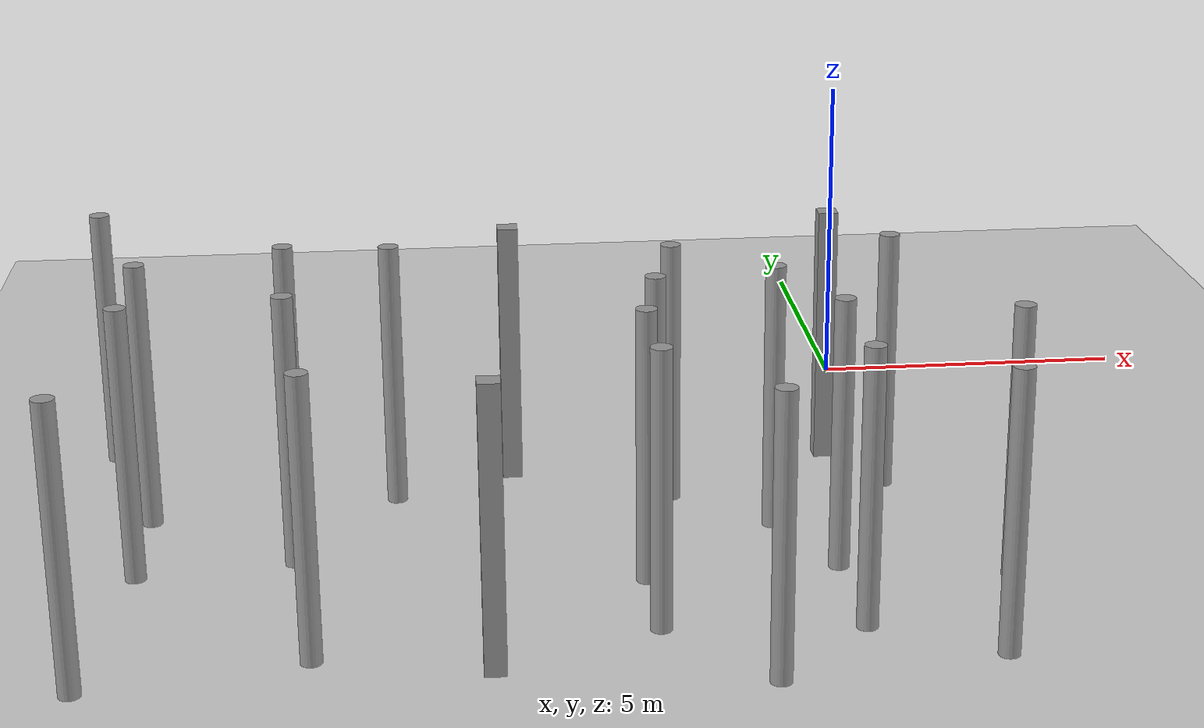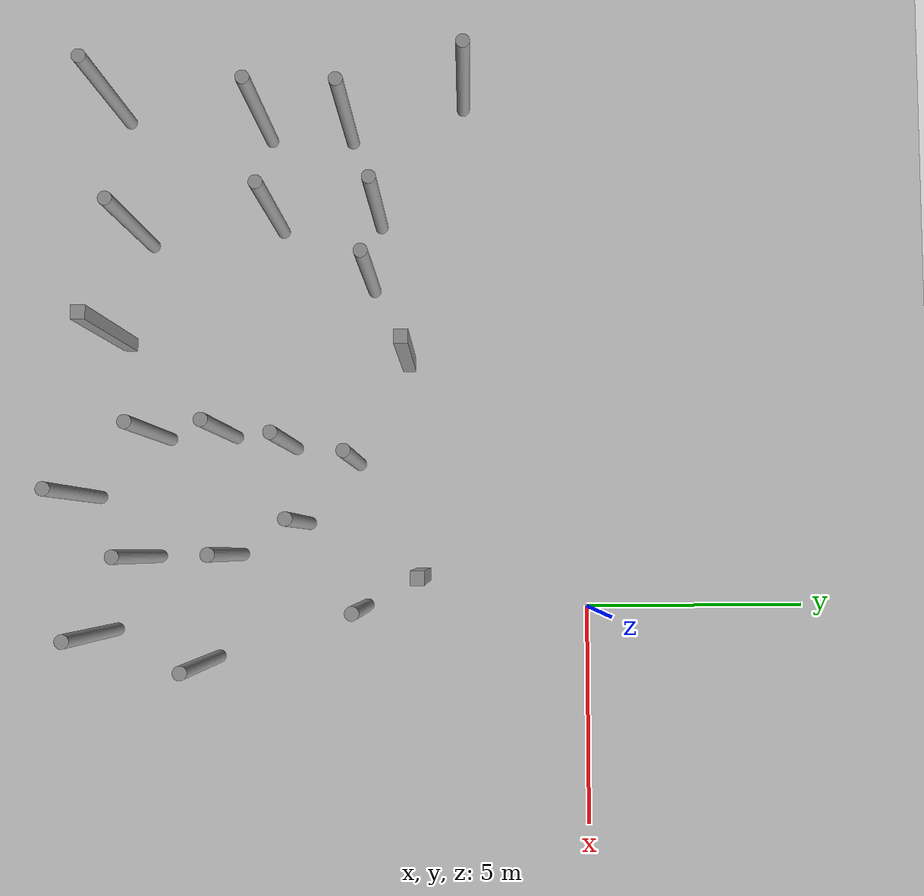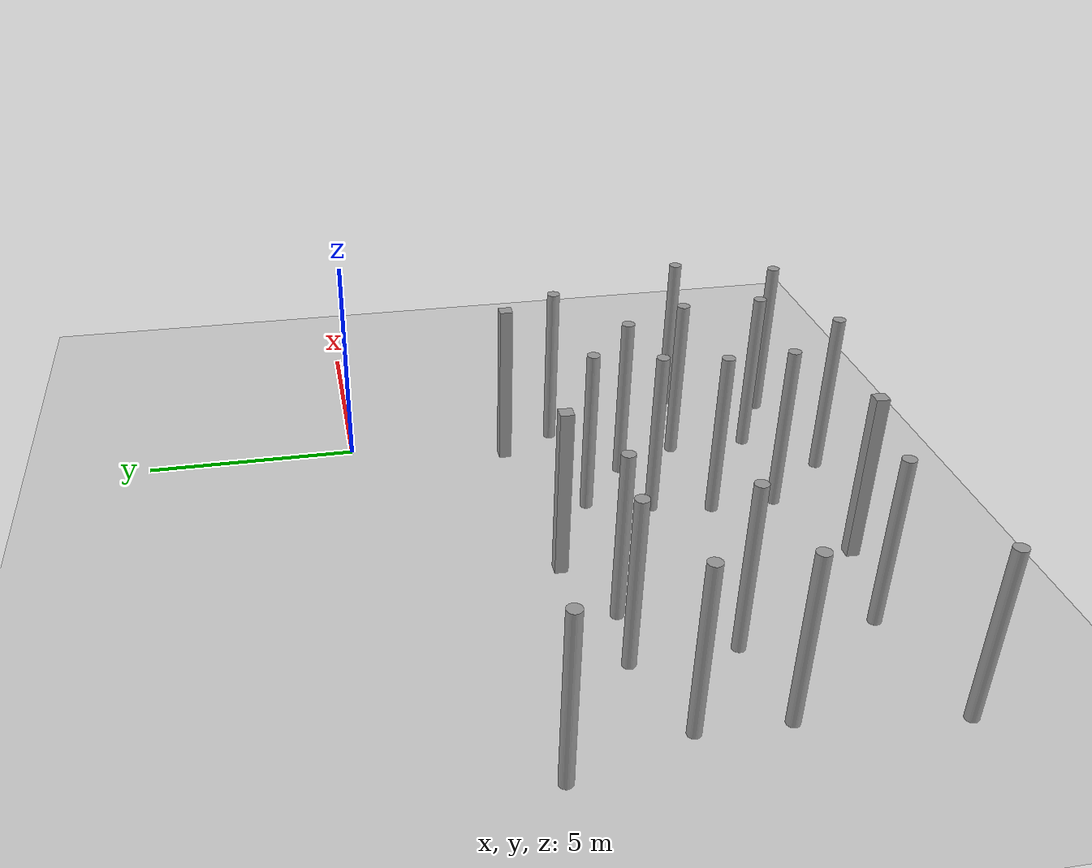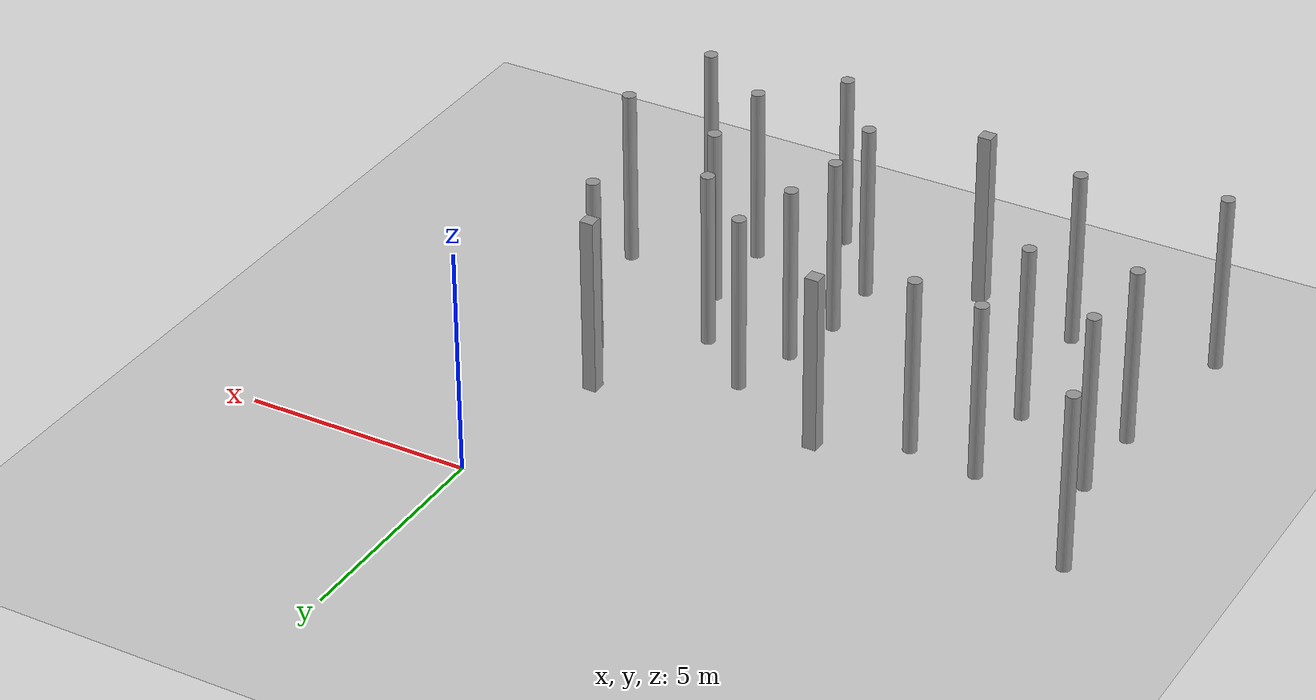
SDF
<sdf version="1.6">
 <world name="default">
  <model name="ground_plane">
   <static>1</static>
   <link name="link">
    <collision name="collision">
     <geometry><plane><normal>0 0 1</normal><size>100 100</size></plane></geometry>
    </collision>
    <visual name="visual">
     <cast_shadows>0</cast_shadows>
     <geometry><plane><normal>0 0 1</normal><size>100 100</size></plane></geometry>
     <material>
      <script><uri>file://media/materials/scripts/gazebo.material</uri><name>Gazebo/Gray</name></script>
     </material>
    </visual>
   </link>
  </model>
  <model name="unit_cylinder_clone_1_clone">
   <link name="link">
    <inertial>
     <mass>1000</mass>
     <inertia><ixx>145.833</ixx><ixy>0</ixy><ixz>0</ixz><iyy>145.833</iyy><iyz>0</iyz><izz>125</izz></inertia>
    </inertial>
    <visual name="visual">
     <geometry><cylinder><radius>0.15</radius><length>4</length></cylinder></geometry>
     <material>
      <script><name>Gazebo/Grey</name><uri>file://media/materials/scripts/gazebo.material</uri></script>
      <shader type="vertex"><normal_map>__default__</normal_map></shader>
      <ambient>0.3 0.3 0.3 1</ambient>
      <diffuse>0.7 0.7 0.7 1</diffuse>
      <specular>0.01 0.01 0.01 1</specular>
      <emissive>0 0 0 1</emissive>
     </material>
    </visual>
    <collision name="collision">
     <geometry><cylinder><radius>0.15</radius><length>4</length></cylinder></geometry>
     <surface>
      <friction>
       <ode><mu>1</mu><mu2>1</mu2><fdir1>0 0 0</fdir1><slip1>0</slip1><slip2>0</slip2></ode>
       <torsional>
        <coefficient>1</coefficient>
        <patch_radius>0</patch_radius>
        <surface_radius>0</surface_radius>
        <use_patch_radius>1</use_patch_radius>
        <ode><slip>0</slip></ode>
       </torsional>
      </friction>
      <bounce><restitution_coefficient>0</restitution_coefficient><threshold>1e+06</threshold></bounce>
      <contact>
       <collide_without_contact>0</collide_without_contact>
       <collide_without_contact_bitmask>1</collide_without_contact_bitmask>
       <collide_bitmask>1</collide_bitmask>
       <ode>
        <soft_cfm>0</soft_cfm>
        <soft_erp>0.2</soft_erp>
        <kp>1e+13</kp>
        <kd>1</kd>
        <max_vel>0.01</max_vel>
        <min_depth>0</min_depth>
       </ode>
       <bullet>
        <split_impulse>1</split_impulse>
        <split_impulse_penetration_threshold>-0.01</split_impulse_penetration_threshold>
        <soft_cfm>0</soft_cfm>
        <soft_erp>0.2</soft_erp>
        <kp>1e+13</kp>
        <kd>1</kd>
       </bullet>
      </contact>
     </surface>
    </collision>
   </link>
   <static>0</static>
   <pose>-1.25294 -8.01954 1.99995 -0.000273 -5e-06 -0.813292</pose>
  </model>
  <model name="unit_cylinder_clone_1_clone_1">
   <link name="link">
    <inertial>
     <mass>1000</mass>
     <inertia><ixx>145.833</ixx><ixy>0</ixy><ixz>0</ixz><iyy>145.833</iyy><iyz>0</iyz><izz>125</izz></inertia>
    </inertial>
    <visual name="visual">
     <geometry><cylinder><radius>0.15</radius><length>4</length></cylinder></geometry>
     <material>
      <script><name>Gazebo/Grey</name><uri>file://media/materials/scripts/gazebo.material</uri></script>
      <shader type="vertex"><normal_map>__default__</normal_map></shader>
      <ambient>0.3 0.3 0.3 1</ambient>
      <diffuse>0.7 0.7 0.7 1</diffuse>
      <specular>0.01 0.01 0.01 1</specular>
      <emissive>0 0 0 1</emissive>
     </material>
    </visual>
    <collision name="collision">
     <geometry><cylinder><radius>0.15</radius><length>4</length></cylinder></geometry>
     <surface>
      <friction>
       <ode><mu>1</mu><mu2>1</mu2><fdir1>0 0 0</fdir1><slip1>0</slip1><slip2>0</slip2></ode>
       <torsional>
        <coefficient>1</coefficient>
        <patch_radius>0</patch_radius>
        <surface_radius>0</surface_radius>
        <use_patch_radius>1</use_patch_radius>
        <ode><slip>0</slip></ode>
       </torsional>
      </friction>
      <bounce><restitution_coefficient>0</restitution_coefficient><threshold>1e+06</threshold></bounce>
      <contact>
       <collide_without_contact>0</collide_without_contact>
       <collide_without_contact_bitmask>1</collide_without_contact_bitmask>
       <collide_bitmask>1</collide_bitmask>
       <ode>
        <soft_cfm>0</soft_cfm>
        <soft_erp>0.2</soft_erp>
        <kp>1e+13</kp>
        <kd>1</kd>
        <max_vel>0.01</max_vel>
        <min_depth>0</min_depth>
       </ode>
       <bullet>
        <split_impulse>1</split_impulse>
        <split_impulse_penetration_threshold>-0.01</split_impulse_penetration_threshold>
        <soft_cfm>0</soft_cfm>
        <soft_erp>0.2</soft_erp>
        <kp>1e+13</kp>
        <kd>1</kd>
       </bullet>
      </contact>
     </surface>
    </collision>
   </link>
   <static>0</static>
   <pose>-11.8294 -2.81455 1.99995 -0.000273 -7e-06 -0.819592</pose>
  </model>
  <model name="unit_cylinder_clone_1_clone_2">
   <link name="link">
    <inertial>
     <mass>1000</mass>
     <inertia><ixx>145.833</ixx><ixy>0</ixy><ixz>0</ixz><iyy>145.833</iyy><iyz>0</iyz><izz>125</izz></inertia>
    </inertial>
    <visual name="visual">
     <geometry><cylinder><radius>0.15</radius><length>4</length></cylinder></geometry>
     <material>
      <script><name>Gazebo/Grey</name><uri>file://media/materials/scripts/gazebo.material</uri></script>
      <shader type="vertex"><normal_map>__default__</normal_map></shader>
      <ambient>0.3 0.3 0.3 1</ambient>
      <diffuse>0.7 0.7 0.7 1</diffuse>
      <specular>0.01 0.01 0.01 1</specular>
      <emissive>0 0 0 1</emissive>
     </material>
    </visual>
    <collision name="collision">
     <geometry><cylinder><radius>0.15</radius><length>4</length></cylinder></geometry>
     <surface>
      <friction>
       <ode><mu>1</mu><mu2>1</mu2><fdir1>0 0 0</fdir1><slip1>0</slip1><slip2>0</slip2></ode>
       <torsional>
        <coefficient>1</coefficient>
        <patch_radius>0</patch_radius>
        <surface_radius>0</surface_radius>
        <use_patch_radius>1</use_patch_radius>
        <ode><slip>0</slip></ode>
       </torsional>
      </friction>
      <bounce><restitution_coefficient>0</restitution_coefficient><threshold>1e+06</threshold></bounce>
      <contact>
       <collide_without_contact>0</collide_without_contact>
       <collide_without_contact_bitmask>1</collide_without_contact_bitmask>
       <collide_bitmask>1</collide_bitmask>
       <ode>
        <soft_cfm>0</soft_cfm>
        <soft_erp>0.2</soft_erp>
        <kp>1e+13</kp>
        <kd>1</kd>
        <max_vel>0.01</max_vel>
        <min_depth>0</min_depth>
       </ode>
       <bullet>
        <split_impulse>1</split_impulse>
        <split_impulse_penetration_threshold>-0.01</split_impulse_penetration_threshold>
        <soft_cfm>0</soft_cfm>
        <soft_erp>0.2</soft_erp>
        <kp>1e+13</kp>
        <kd>1</kd>
       </bullet>
      </contact>
     </surface>
    </collision>
   </link>
   <static>0</static>
   <pose>-3.72676 -6.76726 1.99995 -0.000273 -6e-06 -0.814941</pose>
  </model>
  <model name="unit_cylinder_clone_1_clone_4">
   <link name="link">
    <inertial>
     <mass>1000</mass>
     <inertia><ixx>145.833</ixx><ixy>0</ixy><ixz>0</ixz><iyy>145.833</iyy><iyz>0</iyz><izz>125</izz></inertia>
    </inertial>
    <visual name="visual">
     <geometry><cylinder><radius>0.15</radius><length>4</length></cylinder></geometry>
     <material>
      <script><name>Gazebo/Grey</name><uri>file://media/materials/scripts/gazebo.material</uri></script>
      <shader type="vertex"><normal_map>__default__</normal_map></shader>
      <ambient>0.3 0.3 0.3 1</ambient>
      <diffuse>0.7 0.7 0.7 1</diffuse>
      <specular>0.01 0.01 0.01 1</specular>
      <emissive>0 0 0 1</emissive>
     </material>
    </visual>
    <collision name="collision">
     <geometry><cylinder><radius>0.15</radius><length>4</length></cylinder></geometry>
     <surface>
      <friction>
       <ode><mu>1</mu><mu2>1</mu2><fdir1>0 0 0</fdir1><slip1>0</slip1><slip2>0</slip2></ode>
       <torsional>
        <coefficient>1</coefficient>
        <patch_radius>0</patch_radius>
        <surface_radius>0</surface_radius>
        <use_patch_radius>1</use_patch_radius>
        <ode><slip>0</slip></ode>
       </torsional>
      </friction>
      <bounce><restitution_coefficient>0</restitution_coefficient><threshold>1e+06</threshold></bounce>
      <contact>
       <collide_without_contact>0</collide_without_contact>
       <collide_without_contact_bitmask>1</collide_without_contact_bitmask>
       <collide_bitmask>1</collide_bitmask>
       <ode>
        <soft_cfm>0</soft_cfm>
        <soft_erp>0.2</soft_erp>
        <kp>1e+13</kp>
        <kd>1</kd>
        <max_vel>0.01</max_vel>
        <min_depth>0</min_depth>
       </ode>
       <bullet>
        <split_impulse>1</split_impulse>
        <split_impulse_penetration_threshold>-0.01</split_impulse_penetration_threshold>
        <soft_cfm>0</soft_cfm>
        <soft_erp>0.2</soft_erp>
        <kp>1e+13</kp>
        <kd>1</kd>
       </bullet>
      </contact>
     </surface>
    </collision>
   </link>
   <static>0</static>
   <pose>-8.98498 -4.76556 1.99995 -0.000273 -8e-06 -0.821556</pose>
  </model>
  <model name="unit_cylinder_clone_1_clone_6">
   <link name="link">
    <inertial>
     <mass>1000</mass>
     <inertia><ixx>145.833</ixx><ixy>0</ixy><ixz>0</ixz><iyy>145.833</iyy><iyz>0</iyz><izz>125</izz></inertia>
    </inertial>
    <visual name="visual">
     <geometry><cylinder><radius>0.15</radius><length>4</length></cylinder></geometry>
     <material>
      <script><name>Gazebo/Grey</name><uri>file://media/materials/scripts/gazebo.material</uri></script>
      <shader type="vertex"><normal_map>__default__</normal_map></shader>
      <ambient>0.3 0.3 0.3 1</ambient>
      <diffuse>0.7 0.7 0.7 1</diffuse>
      <specular>0.01 0.01 0.01 1</specular>
      <emissive>0 0 0 1</emissive>
     </material>
    </visual>
    <collision name="collision">
     <geometry><cylinder><radius>0.15</radius><length>4</length></cylinder></geometry>
     <surface>
      <friction>
       <ode><mu>1</mu><mu2>1</mu2><fdir1>0 0 0</fdir1><slip1>0</slip1><slip2>0</slip2></ode>
       <torsional>
        <coefficient>1</coefficient>
        <patch_radius>0</patch_radius>
        <surface_radius>0</surface_radius>
        <use_patch_radius>1</use_patch_radius>
        <ode><slip>0</slip></ode>
       </torsional>
      </friction>
      <bounce><restitution_coefficient>0</restitution_coefficient><threshold>1e+06</threshold></bounce>
      <contact>
       <collide_without_contact>0</collide_without_contact>
       <collide_without_contact_bitmask>1</collide_without_contact_bitmask>
       <collide_bitmask>1</collide_bitmask>
       <ode>
        <soft_cfm>0</soft_cfm>
        <soft_erp>0.2</soft_erp>
        <kp>1e+13</kp>
        <kd>1</kd>
        <max_vel>0.01</max_vel>
        <min_depth>0</min_depth>
       </ode>
       <bullet>
        <split_impulse>1</split_impulse>
        <split_impulse_penetration_threshold>-0.01</split_impulse_penetration_threshold>
        <soft_cfm>0</soft_cfm>
        <soft_erp>0.2</soft_erp>
        <kp>1e+13</kp>
        <kd>1</kd>
       </bullet>
      </contact>
     </surface>
    </collision>
   </link>
   <static>0</static>
   <pose>-3.34518 -5.28353 1.99998 -1e-06 -2e-06 -0.191092</pose>
  </model>
  <model name="unit_cylinder_clone_1_clone_10">
   <link name="link">
    <inertial>
     <mass>1000</mass>
     <inertia><ixx>145.833</ixx><ixy>0</ixy><ixz>0</ixz><iyy>145.833</iyy><iyz>0</iyz><izz>125</izz></inertia>
    </inertial>
    <visual name="visual">
     <geometry><cylinder><radius>0.15</radius><length>4</length></cylinder></geometry>
     <material>
      <script><name>Gazebo/Grey</name><uri>file://media/materials/scripts/gazebo.material</uri></script>
      <shader type="vertex"><normal_map>__default__</normal_map></shader>
      <ambient>0.3 0.3 0.3 1</ambient>
      <diffuse>0.7 0.7 0.7 1</diffuse>
      <specular>0.01 0.01 0.01 1</specular>
      <emissive>0 0 0 1</emissive>
     </material>
    </visual>
    <collision name="collision">
     <geometry><cylinder><radius>0.15</radius><length>4</length></cylinder></geometry>
     <surface>
      <friction>
       <ode><mu>1</mu><mu2>1</mu2><fdir1>0 0 0</fdir1><slip1>0</slip1><slip2>0</slip2></ode>
       <torsional>
        <coefficient>1</coefficient>
        <patch_radius>0</patch_radius>
        <surface_radius>0</surface_radius>
        <use_patch_radius>1</use_patch_radius>
        <ode><slip>0</slip></ode>
       </torsional>
      </friction>
      <bounce><restitution_coefficient>0</restitution_coefficient><threshold>1e+06</threshold></bounce>
      <contact>
       <collide_without_contact>0</collide_without_contact>
       <collide_without_contact_bitmask>1</collide_without_contact_bitmask>
       <collide_bitmask>1</collide_bitmask>
       <ode>
        <soft_cfm>0</soft_cfm>
        <soft_erp>0.2</soft_erp>
        <kp>1e+13</kp>
        <kd>1</kd>
        <max_vel>0.01</max_vel>
        <min_depth>0</min_depth>
       </ode>
       <bullet>
        <split_impulse>1</split_impulse>
        <split_impulse_penetration_threshold>-0.01</split_impulse_penetration_threshold>
        <soft_cfm>0</soft_cfm>
        <soft_erp>0.2</soft_erp>
        <kp>1e+13</kp>
        <kd>1</kd>
       </bullet>
      </contact>
     </surface>
    </collision>
   </link>
   <static>0</static>
   <pose>-0.052375 -5.1113 1.99998 -1e-06 -1e-06 -0.168855</pose>
  </model>
  <model name="unit_cylinder_clone_1_clone_12">
   <link name="link">
    <inertial>
     <mass>1000</mass>
     <inertia><ixx>145.833</ixx><ixy>0</ixy><ixz>0</ixz><iyy>145.833</iyy><iyz>0</iyz><izz>125</izz></inertia>
    </inertial>
    <visual name="visual">
     <geometry><cylinder><radius>0.15</radius><length>4</length></cylinder></geometry>
     <material>
      <script><name>Gazebo/Grey</name><uri>file://media/materials/scripts/gazebo.material</uri></script>
      <shader type="vertex"><normal_map>__default__</normal_map></shader>
      <ambient>0.3 0.3 0.3 1</ambient>
      <diffuse>0.7 0.7 0.7 1</diffuse>
      <specular>0.01 0.01 0.01 1</specular>
      <emissive>0 0 0 1</emissive>
     </material>
    </visual>
    <collision name="collision">
     <geometry><cylinder><radius>0.15</radius><length>4</length></cylinder></geometry>
     <surface>
      <friction>
       <ode><mu>1</mu><mu2>1</mu2><fdir1>0 0 0</fdir1><slip1>0</slip1><slip2>0</slip2></ode>
       <torsional>
        <coefficient>1</coefficient>
        <patch_radius>0</patch_radius>
        <surface_radius>0</surface_radius>
        <use_patch_radius>1</use_patch_radius>
        <ode><slip>0</slip></ode>
       </torsional>
      </friction>
      <bounce><restitution_coefficient>0</restitution_coefficient><threshold>1e+06</threshold></bounce>
      <contact>
       <collide_without_contact>0</collide_without_contact>
       <collide_without_contact_bitmask>1</collide_without_contact_bitmask>
       <collide_bitmask>1</collide_bitmask>
       <ode>
        <soft_cfm>0</soft_cfm>
        <soft_erp>0.2</soft_erp>
        <kp>1e+13</kp>
        <kd>1</kd>
        <max_vel>0.01</max_vel>
        <min_depth>0</min_depth>
       </ode>
       <bullet>
        <split_impulse>1</split_impulse>
        <split_impulse_penetration_threshold>-0.01</split_impulse_penetration_threshold>
        <soft_cfm>0</soft_cfm>
        <soft_erp>0.2</soft_erp>
        <kp>1e+13</kp>
        <kd>1</kd>
       </bullet>
      </contact>
     </surface>
    </collision>
   </link>
   <static>0</static>
   <pose>-7.44926 -4.93596 1.99995 -0.000273 -6e-06 -0.815473</pose>
  </model>
  <model name="unit_cylinder_clone_1_clone_15">
   <link name="link">
    <inertial>
     <mass>1000</mass>
     <inertia><ixx>145.833</ixx><ixy>0</ixy><ixz>0</ixz><iyy>145.833</iyy><iyz>0</iyz><izz>125</izz></inertia>
    </inertial>
    <visual name="visual">
     <geometry><cylinder><radius>0.15</radius><length>4</length></cylinder></geometry>
     <material>
      <script><name>Gazebo/Grey</name><uri>file://media/materials/scripts/gazebo.material</uri></script>
      <shader type="vertex"><normal_map>__default__</normal_map></shader>
      <ambient>0.3 0.3 0.3 1</ambient>
      <diffuse>0.7 0.7 0.7 1</diffuse>
      <specular>0.01 0.01 0.01 1</specular>
      <emissive>0 0 0 1</emissive>
     </material>
    </visual>
    <collision name="collision">
     <geometry><cylinder><radius>0.15</radius><length>4</length></cylinder></geometry>
     <surface>
      <friction>
       <ode><mu>1</mu><mu2>1</mu2><fdir1>0 0 0</fdir1><slip1>0</slip1><slip2>0</slip2></ode>
       <torsional>
        <coefficient>1</coefficient>
        <patch_radius>0</patch_radius>
        <surface_radius>0</surface_radius>
        <use_patch_radius>1</use_patch_radius>
        <ode><slip>0</slip></ode>
       </torsional>
      </friction>
      <bounce><restitution_coefficient>0</restitution_coefficient><threshold>1e+06</threshold></bounce>
      <contact>
       <collide_without_contact>0</collide_without_contact>
       <collide_without_contact_bitmask>1</collide_without_contact_bitmask>
       <collide_bitmask>1</collide_bitmask>
       <ode>
        <soft_cfm>0</soft_cfm>
        <soft_erp>0.2</soft_erp>
        <kp>1e+13</kp>
        <kd>1</kd>
        <max_vel>0.01</max_vel>
        <min_depth>0</min_depth>
       </ode>
       <bullet>
        <split_impulse>1</split_impulse>
        <split_impulse_penetration_threshold>-0.01</split_impulse_penetration_threshold>
        <soft_cfm>0</soft_cfm>
        <soft_erp>0.2</soft_erp>
        <kp>1e+13</kp>
        <kd>1</kd>
       </bullet>
      </contact>
     </surface>
    </collision>
   </link>
   <static>0</static>
   <pose>-11.0929 -7.37595 1.99995 -0.000273 -6e-06 -0.816764</pose>
  </model>
  <model name="unit_cylinder_clone_1_clone_16">
   <link name="link">
    <inertial>
     <mass>1000</mass>
     <inertia><ixx>145.833</ixx><ixy>0</ixy><ixz>0</ixz><iyy>145.833</iyy><iyz>0</iyz><izz>125</izz></inertia>
    </inertial>
    <visual name="visual">
     <geometry><cylinder><radius>0.15</radius><length>4</length></cylinder></geometry>
     <material>
      <script><name>Gazebo/Grey</name><uri>file://media/materials/scripts/gazebo.material</uri></script>
      <shader type="vertex"><normal_map>__default__</normal_map></shader>
      <ambient>0.3 0.3 0.3 1</ambient>
      <diffuse>0.7 0.7 0.7 1</diffuse>
      <specular>0.01 0.01 0.01 1</specular>
      <emissive>0 0 0 1</emissive>
     </material>
    </visual>
    <collision name="collision">
     <geometry><cylinder><radius>0.15</radius><length>4</length></cylinder></geometry>
     <surface>
      <friction>
       <ode><mu>1</mu><mu2>1</mu2><fdir1>0 0 0</fdir1><slip1>0</slip1><slip2>0</slip2></ode>
       <torsional>
        <coefficient>1</coefficient>
        <patch_radius>0</patch_radius>
        <surface_radius>0</surface_radius>
        <use_patch_radius>1</use_patch_radius>
        <ode><slip>0</slip></ode>
       </torsional>
      </friction>
      <bounce><restitution_coefficient>0</restitution_coefficient><threshold>1e+06</threshold></bounce>
      <contact>
       <collide_without_contact>0</collide_without_contact>
       <collide_without_contact_bitmask>1</collide_without_contact_bitmask>
       <collide_bitmask>1</collide_bitmask>
       <ode>
        <soft_cfm>0</soft_cfm>
        <soft_erp>0.2</soft_erp>
        <kp>1e+13</kp>
        <kd>1</kd>
        <max_vel>0.01</max_vel>
        <min_depth>0</min_depth>
       </ode>
       <bullet>
        <split_impulse>1</split_impulse>
        <split_impulse_penetration_threshold>-0.01</split_impulse_penetration_threshold>
        <soft_cfm>0</soft_cfm>
        <soft_erp>0.2</soft_erp>
        <kp>1e+13</kp>
        <kd>1</kd>
       </bullet>
      </contact>
     </surface>
    </collision>
   </link>
   <static>0</static>
   <pose>-1.96725 -6.45879 1.99995 -0.000273 -7e-06 -0.818492</pose>
  </model>
  <model name="unit_cylinder_clone_1_clone_17">
   <link name="link">
    <inertial>
     <mass>1000</mass>
     <inertia><ixx>145.833</ixx><ixy>0</ixy><ixz>0</ixz><iyy>145.833</iyy><iyz>0</iyz><izz>125</izz></inertia>
    </inertial>
    <visual name="visual">
     <geometry><cylinder><radius>0.15</radius><length>4</length></cylinder></geometry>
     <material>
      <script><name>Gazebo/Grey</name><uri>file://media/materials/scripts/gazebo.material</uri></script>
      <shader type="vertex"><normal_map>__default__</normal_map></shader>
      <ambient>0.3 0.3 0.3 1</ambient>
      <diffuse>0.7 0.7 0.7 1</diffuse>
      <specular>0.01 0.01 0.01 1</specular>
      <emissive>0 0 0 1</emissive>
     </material>
    </visual>
    <collision name="collision">
     <geometry><cylinder><radius>0.15</radius><length>4</length></cylinder></geometry>
     <surface>
      <friction>
       <ode><mu>1</mu><mu2>1</mu2><fdir1>0 0 0</fdir1><slip1>0</slip1><slip2>0</slip2></ode>
       <torsional>
        <coefficient>1</coefficient>
        <patch_radius>0</patch_radius>
        <surface_radius>0</surface_radius>
        <use_patch_radius>1</use_patch_radius>
        <ode><slip>0</slip></ode>
       </torsional>
      </friction>
      <bounce><restitution_coefficient>0</restitution_coefficient><threshold>1e+06</threshold></bounce>
      <contact>
       <collide_without_contact>0</collide_without_contact>
       <collide_without_contact_bitmask>1</collide_without_contact_bitmask>
       <collide_bitmask>1</collide_bitmask>
       <ode>
        <soft_cfm>0</soft_cfm>
        <soft_erp>0.2</soft_erp>
        <kp>1e+13</kp>
        <kd>1</kd>
        <max_vel>0.01</max_vel>
        <min_depth>0</min_depth>
       </ode>
       <bullet>
        <split_impulse>1</split_impulse>
        <split_impulse_penetration_threshold>-0.01</split_impulse_penetration_threshold>
        <soft_cfm>0</soft_cfm>
        <soft_erp>0.2</soft_erp>
        <kp>1e+13</kp>
        <kd>1</kd>
       </bullet>
      </contact>
     </surface>
    </collision>
   </link>
   <static>0</static>
   <pose>-1.21887 -9.94585 1.99995 -0.000273 -7e-06 -0.818523</pose>
  </model>
  <model name="unit_cylinder_clone_1_clone_18">
   <link name="link">
    <inertial>
     <mass>1000</mass>
     <inertia><ixx>145.833</ixx><ixy>0</ixy><ixz>0</ixz><iyy>145.833</iyy><iyz>0</iyz><izz>125</izz></inertia>
    </inertial>
    <visual name="visual">
     <geometry><cylinder><radius>0.15</radius><length>4</length></cylinder></geometry>
     <material>
      <script><name>Gazebo/Grey</name><uri>file://media/materials/scripts/gazebo.material</uri></script>
      <shader type="vertex"><normal_map>__default__</normal_map></shader>
      <ambient>0.3 0.3 0.3 1</ambient>
      <diffuse>0.7 0.7 0.7 1</diffuse>
      <specular>0.01 0.01 0.01 1</specular>
      <emissive>0 0 0 1</emissive>
     </material>
    </visual>
    <collision name="collision">
     <geometry><cylinder><radius>0.15</radius><length>4</length></cylinder></geometry>
     <surface>
      <friction>
       <ode><mu>1</mu><mu2>1</mu2><fdir1>0 0 0</fdir1><slip1>0</slip1><slip2>0</slip2></ode>
       <torsional>
        <coefficient>1</coefficient>
        <patch_radius>0</patch_radius>
        <surface_radius>0</surface_radius>
        <use_patch_radius>1</use_patch_radius>
        <ode><slip>0</slip></ode>
       </torsional>
      </friction>
      <bounce><restitution_coefficient>0</restitution_coefficient><threshold>1e+06</threshold></bounce>
      <contact>
       <collide_without_contact>0</collide_without_contact>
       <collide_without_contact_bitmask>1</collide_without_contact_bitmask>
       <collide_bitmask>1</collide_bitmask>
       <ode>
        <soft_cfm>0</soft_cfm>
        <soft_erp>0.2</soft_erp>
        <kp>1e+13</kp>
        <kd>1</kd>
        <max_vel>0.01</max_vel>
        <min_depth>0</min_depth>
       </ode>
       <bullet>
        <split_impulse>1</split_impulse>
        <split_impulse_penetration_threshold>-0.01</split_impulse_penetration_threshold>
        <soft_cfm>0</soft_cfm>
        <soft_erp>0.2</soft_erp>
        <kp>1e+13</kp>
        <kd>1</kd>
       </bullet>
      </contact>
     </surface>
    </collision>
   </link>
   <static>0</static>
   <pose>-11.5641 -10.7588 1.99995 -0.000273 -7e-06 -0.82045</pose>
  </model>
  <model name="unit_cylinder_clone_1_clone_19">
   <link name="link">
    <inertial>
     <mass>1000</mass>
     <inertia><ixx>145.833</ixx><ixy>0</ixy><ixz>0</ixz><iyy>145.833</iyy><iyz>0</iyz><izz>125</izz></inertia>
    </inertial>
    <visual name="visual">
     <geometry><cylinder><radius>0.15</radius><length>4</length></cylinder></geometry>
     <material>
      <script><name>Gazebo/Grey</name><uri>file://media/materials/scripts/gazebo.material</uri></script>
      <shader type="vertex"><normal_map>__default__</normal_map></shader>
      <ambient>0.3 0.3 0.3 1</ambient>
      <diffuse>0.7 0.7 0.7 1</diffuse>
      <specular>0.01 0.01 0.01 1</specular>
      <emissive>0 0 0 1</emissive>
     </material>
    </visual>
    <collision name="collision">
     <geometry><cylinder><radius>0.15</radius><length>4</length></cylinder></geometry>
     <surface>
      <friction>
       <ode><mu>1</mu><mu2>1</mu2><fdir1>0 0 0</fdir1><slip1>0</slip1><slip2>0</slip2></ode>
       <torsional>
        <coefficient>1</coefficient>
        <patch_radius>0</patch_radius>
        <surface_radius>0</surface_radius>
        <use_patch_radius>1</use_patch_radius>
        <ode><slip>0</slip></ode>
       </torsional>
      </friction>
      <bounce><restitution_coefficient>0</restitution_coefficient><threshold>1e+06</threshold></bounce>
      <contact>
       <collide_without_contact>0</collide_without_contact>
       <collide_without_contact_bitmask>1</collide_without_contact_bitmask>
       <collide_bitmask>1</collide_bitmask>
       <ode>
        <soft_cfm>0</soft_cfm>
        <soft_erp>0.2</soft_erp>
        <kp>1e+13</kp>
        <kd>1</kd>
        <max_vel>0.01</max_vel>
        <min_depth>0</min_depth>
       </ode>
       <bullet>
        <split_impulse>1</split_impulse>
        <split_impulse_penetration_threshold>-0.01</split_impulse_penetration_threshold>
        <soft_cfm>0</soft_cfm>
        <soft_erp>0.2</soft_erp>
        <kp>1e+13</kp>
        <kd>1</kd>
       </bullet>
      </contact>
     </surface>
    </collision>
   </link>
   <static>0</static>
   <pose>1.11078 -8.55603 1.99995 -0.000273 -6e-06 -0.81749</pose>
  </model>
  <model name="unit_cylinder_clone_1_clone_21">
   <link name="link">
    <inertial>
     <mass>1000</mass>
     <inertia><ixx>145.833</ixx><ixy>0</ixy><ixz>0</ixz><iyy>145.833</iyy><iyz>0</iyz><izz>125</izz></inertia>
    </inertial>
    <visual name="visual">
     <geometry><cylinder><radius>0.15</radius><length>4</length></cylinder></geometry>
     <material>
      <script><name>Gazebo/Grey</name><uri>file://media/materials/scripts/gazebo.material</uri></script>
      <shader type="vertex"><normal_map>__default__</normal_map></shader>
      <ambient>0.3 0.3 0.3 1</ambient>
      <diffuse>0.7 0.7 0.7 1</diffuse>
      <specular>0.01 0.01 0.01 1</specular>
      <emissive>0 0 0 1</emissive>
     </material>
    </visual>
    <collision name="collision">
     <geometry><cylinder><radius>0.15</radius><length>4</length></cylinder></geometry>
     <surface>
      <friction>
       <ode><mu>1</mu><mu2>1</mu2><fdir1>0 0 0</fdir1><slip1>0</slip1><slip2>0</slip2></ode>
       <torsional>
        <coefficient>1</coefficient>
        <patch_radius>0</patch_radius>
        <surface_radius>0</surface_radius>
        <use_patch_radius>1</use_patch_radius>
        <ode><slip>0</slip></ode>
       </torsional>
      </friction>
      <bounce><restitution_coefficient>0</restitution_coefficient><threshold>1e+06</threshold></bounce>
      <contact>
       <collide_without_contact>0</collide_without_contact>
       <collide_without_contact_bitmask>1</collide_without_contact_bitmask>
       <collide_bitmask>1</collide_bitmask>
       <ode>
        <soft_cfm>0</soft_cfm>
        <soft_erp>0.2</soft_erp>
        <kp>1e+13</kp>
        <kd>1</kd>
        <max_vel>0.01</max_vel>
        <min_depth>0</min_depth>
       </ode>
       <bullet>
        <split_impulse>1</split_impulse>
        <split_impulse_penetration_threshold>-0.01</split_impulse_penetration_threshold>
        <soft_cfm>0</soft_cfm>
        <soft_erp>0.2</soft_erp>
        <kp>1e+13</kp>
        <kd>1</kd>
       </bullet>
      </contact>
     </surface>
    </collision>
   </link>
   <static>0</static>
   <pose>0.470458 -10.9324 1.99995 -0.000273 -6e-06 -0.81522</pose>
  </model>
  <model name="unit_cylinder_clone_1_clone_25">
   <link name="link">
    <inertial>
     <mass>1000</mass>
     <inertia><ixx>145.833</ixx><ixy>0</ixy><ixz>0</ixz><iyy>145.833</iyy><iyz>0</iyz><izz>125</izz></inertia>
    </inertial>
    <visual name="visual">
     <geometry><cylinder><radius>0.15</radius><length>4</length></cylinder></geometry>
     <material>
      <script><name>Gazebo/Grey</name><uri>file://media/materials/scripts/gazebo.material</uri></script>
      <shader type="vertex"><normal_map>__default__</normal_map></shader>
      <ambient>0.3 0.3 0.3 1</ambient>
      <diffuse>0.7 0.7 0.7 1</diffuse>
      <specular>0.01 0.01 0.01 1</specular>
      <emissive>0 0 0 1</emissive>
     </material>
    </visual>
    <collision name="collision">
     <geometry><cylinder><radius>0.15</radius><length>4</length></cylinder></geometry>
     <surface>
      <friction>
       <ode><mu>1</mu><mu2>1</mu2><fdir1>0 0 0</fdir1><slip1>0</slip1><slip2>0</slip2></ode>
       <torsional>
        <coefficient>1</coefficient>
        <patch_radius>0</patch_radius>
        <surface_radius>0</surface_radius>
        <use_patch_radius>1</use_patch_radius>
        <ode><slip>0</slip></ode>
       </torsional>
      </friction>
      <bounce><restitution_coefficient>0</restitution_coefficient><threshold>1e+06</threshold></bounce>
      <contact>
       <collide_without_contact>0</collide_without_contact>
       <collide_without_contact_bitmask>1</collide_without_contact_bitmask>
       <collide_bitmask>1</collide_bitmask>
       <ode>
        <soft_cfm>0</soft_cfm>
        <soft_erp>0.2</soft_erp>
        <kp>1e+13</kp>
        <kd>1</kd>
        <max_vel>0.01</max_vel>
        <min_depth>0</min_depth>
       </ode>
       <bullet>
        <split_impulse>1</split_impulse>
        <split_impulse_penetration_threshold>-0.01</split_impulse_penetration_threshold>
        <soft_cfm>0</soft_cfm>
        <soft_erp>0.2</soft_erp>
        <kp>1e+13</kp>
        <kd>1</kd>
       </bullet>
      </contact>
     </surface>
    </collision>
   </link>
   <static>0</static>
   <pose>-11.0425 -5.44644 1.99995 -0.000273 -8e-06 -0.821546</pose>
  </model>
  <model name="unit_cylinder_clone_1_clone_26">
   <link name="link">
    <inertial>
     <mass>1000</mass>
     <inertia><ixx>145.833</ixx><ixy>0</ixy><ixz>0</ixz><iyy>145.833</iyy><iyz>0</iyz><izz>125</izz></inertia>
    </inertial>
    <visual name="visual">
     <geometry><cylinder><radius>0.15</radius><length>4</length></cylinder></geometry>
     <material>
      <script><name>Gazebo/Grey</name><uri>file://media/materials/scripts/gazebo.material</uri></script>
      <shader type="vertex"><normal_map>__default__</normal_map></shader>
      <ambient>0.3 0.3 0.3 1</ambient>
      <diffuse>0.7 0.7 0.7 1</diffuse>
      <specular>0.01 0.01 0.01 1</specular>
      <emissive>0 0 0 1</emissive>
     </material>
    </visual>
    <collision name="collision">
     <geometry><cylinder><radius>0.15</radius><length>4</length></cylinder></geometry>
     <surface>
      <friction>
       <ode><mu>1</mu><mu2>1</mu2><fdir1>0 0 0</fdir1><slip1>0</slip1><slip2>0</slip2></ode>
       <torsional>
        <coefficient>1</coefficient>
        <patch_radius>0</patch_radius>
        <surface_radius>0</surface_radius>
        <use_patch_radius>1</use_patch_radius>
        <ode><slip>0</slip></ode>
       </torsional>
      </friction>
      <bounce><restitution_coefficient>0</restitution_coefficient><threshold>1e+06</threshold></bounce>
      <contact>
       <collide_without_contact>0</collide_without_contact>
       <collide_without_contact_bitmask>1</collide_without_contact_bitmask>
       <collide_bitmask>1</collide_bitmask>
       <ode>
        <soft_cfm>0</soft_cfm>
        <soft_erp>0.2</soft_erp>
        <kp>1e+13</kp>
        <kd>1</kd>
        <max_vel>0.01</max_vel>
        <min_depth>0</min_depth>
       </ode>
       <bullet>
        <split_impulse>1</split_impulse>
        <split_impulse_penetration_threshold>-0.01</split_impulse_penetration_threshold>
        <soft_cfm>0</soft_cfm>
        <soft_erp>0.2</soft_erp>
        <kp>1e+13</kp>
        <kd>1</kd>
       </bullet>
      </contact>
     </surface>
    </collision>
   </link>
   <static>0</static>
   <pose>-3.96152 -9.72624 1.99995 -0.000273 -7e-06 -0.820698</pose>
  </model>
  <model name="unit_cylinder_clone_1_clone_27">
   <link name="link">
    <inertial>
     <mass>1000</mass>
     <inertia><ixx>145.833</ixx><ixy>0</ixy><ixz>0</ixz><iyy>145.833</iyy><iyz>0</iyz><izz>125</izz></inertia>
    </inertial>
    <visual name="visual">
     <geometry><cylinder><radius>0.15</radius><length>4</length></cylinder></geometry>
     <material>
      <script><name>Gazebo/Grey</name><uri>file://media/materials/scripts/gazebo.material</uri></script>
      <shader type="vertex"><normal_map>__default__</normal_map></shader>
      <ambient>0.3 0.3 0.3 1</ambient>
      <diffuse>0.7 0.7 0.7 1</diffuse>
      <specular>0.01 0.01 0.01 1</specular>
      <emissive>0 0 0 1</emissive>
     </material>
    </visual>
    <collision name="collision">
     <geometry><cylinder><radius>0.15</radius><length>4</length></cylinder></geometry>
     <surface>
      <friction>
       <ode><mu>1</mu><mu2>1</mu2><fdir1>0 0 0</fdir1><slip1>0</slip1><slip2>0</slip2></ode>
       <torsional>
        <coefficient>1</coefficient>
        <patch_radius>0</patch_radius>
        <surface_radius>0</surface_radius>
        <use_patch_radius>1</use_patch_radius>
        <ode><slip>0</slip></ode>
       </torsional>
      </friction>
      <bounce><restitution_coefficient>0</restitution_coefficient><threshold>1e+06</threshold></bounce>
      <contact>
       <collide_without_contact>0</collide_without_contact>
       <collide_without_contact_bitmask>1</collide_without_contact_bitmask>
       <collide_bitmask>1</collide_bitmask>
       <ode>
        <soft_cfm>0</soft_cfm>
        <soft_erp>0.2</soft_erp>
        <kp>1e+13</kp>
        <kd>1</kd>
        <max_vel>0.01</max_vel>
        <min_depth>0</min_depth>
       </ode>
       <bullet>
        <split_impulse>1</split_impulse>
        <split_impulse_penetration_threshold>-0.01</split_impulse_penetration_threshold>
        <soft_cfm>0</soft_cfm>
        <soft_erp>0.2</soft_erp>
        <kp>1e+13</kp>
        <kd>1</kd>
       </bullet>
      </contact>
     </surface>
    </collision>
   </link>
   <static>0</static>
   <pose>-3.99605 -8.17669 1.99995 -0.000273 -6e-06 -0.815253</pose>
  </model>
  <model name="unit_cylinder_clone_1_clone_28">
   <link name="link">
    <inertial>
     <mass>1000</mass>
     <inertia><ixx>145.833</ixx><ixy>0</ixy><ixz>0</ixz><iyy>145.833</iyy><iyz>0</iyz><izz>125</izz></inertia>
    </inertial>
    <visual name="visual">
     <geometry><cylinder><radius>0.15</radius><length>4</length></cylinder></geometry>
     <material>
      <script><name>Gazebo/Grey</name><uri>file://media/materials/scripts/gazebo.material</uri></script>
      <shader type="vertex"><normal_map>__default__</normal_map></shader>
      <ambient>0.3 0.3 0.3 1</ambient>
      <diffuse>0.7 0.7 0.7 1</diffuse>
      <specular>0.01 0.01 0.01 1</specular>
      <emissive>0 0 0 1</emissive>
     </material>
    </visual>
    <collision name="collision">
     <geometry><cylinder><radius>0.15</radius><length>4</length></cylinder></geometry>
     <surface>
      <friction>
       <ode><mu>1</mu><mu2>1</mu2><fdir1>0 0 0</fdir1><slip1>0</slip1><slip2>0</slip2></ode>
       <torsional>
        <coefficient>1</coefficient>
        <patch_radius>0</patch_radius>
        <surface_radius>0</surface_radius>
        <use_patch_radius>1</use_patch_radius>
        <ode><slip>0</slip></ode>
       </torsional>
      </friction>
      <bounce><restitution_coefficient>0</restitution_coefficient><threshold>1e+06</threshold></bounce>
      <contact>
       <collide_without_contact>0</collide_without_contact>
       <collide_without_contact_bitmask>1</collide_without_contact_bitmask>
       <collide_bitmask>1</collide_bitmask>
       <ode>
        <soft_cfm>0</soft_cfm>
        <soft_erp>0.2</soft_erp>
        <kp>1e+13</kp>
        <kd>1</kd>
        <max_vel>0.01</max_vel>
        <min_depth>0</min_depth>
       </ode>
       <bullet>
        <split_impulse>1</split_impulse>
        <split_impulse_penetration_threshold>-0.01</split_impulse_penetration_threshold>
        <soft_cfm>0</soft_cfm>
        <soft_erp>0.2</soft_erp>
        <kp>1e+13</kp>
        <kd>1</kd>
       </bullet>
      </contact>
     </surface>
    </collision>
   </link>
   <static>0</static>
   <pose>-2.6051 -11.3607 1.99995 -0.000273 -8e-06 -0.821555</pose>
  </model>
  <model name="unit_cylinder_clone_1_clone_30">
   <link name="link">
    <inertial>
     <mass>1000</mass>
     <inertia><ixx>145.833</ixx><ixy>0</ixy><ixz>0</ixz><iyy>145.833</iyy><iyz>0</iyz><izz>125</izz></inertia>
    </inertial>
    <visual name="visual">
     <geometry><cylinder><radius>0.15</radius><length>4</length></cylinder></geometry>
     <material>
      <script><name>Gazebo/Grey</name><uri>file://media/materials/scripts/gazebo.material</uri></script>
      <shader type="vertex"><normal_map>__default__</normal_map></shader>
      <ambient>0.3 0.3 0.3 1</ambient>
      <diffuse>0.7 0.7 0.7 1</diffuse>
      <specular>0.01 0.01 0.01 1</specular>
      <emissive>0 0 0 1</emissive>
     </material>
    </visual>
    <collision name="collision">
     <geometry><cylinder><radius>0.15</radius><length>4</length></cylinder></geometry>
     <surface>
      <friction>
       <ode><mu>1</mu><mu2>1</mu2><fdir1>0 0 0</fdir1><slip1>0</slip1><slip2>0</slip2></ode>
       <torsional>
        <coefficient>1</coefficient>
        <patch_radius>0</patch_radius>
        <surface_radius>0</surface_radius>
        <use_patch_radius>1</use_patch_radius>
        <ode><slip>0</slip></ode>
       </torsional>
      </friction>
      <bounce><restitution_coefficient>0</restitution_coefficient><threshold>1e+06</threshold></bounce>
      <contact>
       <collide_without_contact>0</collide_without_contact>
       <collide_without_contact_bitmask>1</collide_without_contact_bitmask>
       <collide_bitmask>1</collide_bitmask>
       <ode>
        <soft_cfm>0</soft_cfm>
        <soft_erp>0.2</soft_erp>
        <kp>1e+13</kp>
        <kd>1</kd>
        <max_vel>0.01</max_vel>
        <min_depth>0</min_depth>
       </ode>
       <bullet>
        <split_impulse>1</split_impulse>
        <split_impulse_penetration_threshold>-0.01</split_impulse_penetration_threshold>
        <soft_cfm>0</soft_cfm>
        <soft_erp>0.2</soft_erp>
        <kp>1e+13</kp>
        <kd>1</kd>
       </bullet>
      </contact>
     </surface>
    </collision>
   </link>
   <static>0</static>
   <pose>-8.5687 -10.1806 1.99995 -0.000273 -8e-06 -0.821541</pose>
  </model>
  <model name="unit_cylinder_clone_1_clone_31">
   <link name="link">
    <inertial>
     <mass>1000</mass>
     <inertia><ixx>145.833</ixx><ixy>0</ixy><ixz>0</ixz><iyy>145.833</iyy><iyz>0</iyz><izz>125</izz></inertia>
    </inertial>
    <visual name="visual">
     <geometry><cylinder><radius>0.15</radius><length>4</length></cylinder></geometry>
     <material>
      <script><name>Gazebo/Grey</name><uri>file://media/materials/scripts/gazebo.material</uri></script>
      <shader type="vertex"><normal_map>__default__</normal_map></shader>
      <ambient>0.3 0.3 0.3 1</ambient>
      <diffuse>0.7 0.7 0.7 1</diffuse>
      <specular>0.01 0.01 0.01 1</specular>
      <emissive>0 0 0 1</emissive>
     </material>
    </visual>
    <collision name="collision">
     <geometry><cylinder><radius>0.15</radius><length>4</length></cylinder></geometry>
     <surface>
      <friction>
       <ode><mu>1</mu><mu2>1</mu2><fdir1>0 0 0</fdir1><slip1>0</slip1><slip2>0</slip2></ode>
       <torsional>
        <coefficient>1</coefficient>
        <patch_radius>0</patch_radius>
        <surface_radius>0</surface_radius>
        <use_patch_radius>1</use_patch_radius>
        <ode><slip>0</slip></ode>
       </torsional>
      </friction>
      <bounce><restitution_coefficient>0</restitution_coefficient><threshold>1e+06</threshold></bounce>
      <contact>
       <collide_without_contact>0</collide_without_contact>
       <collide_without_contact_bitmask>1</collide_without_contact_bitmask>
       <collide_bitmask>1</collide_bitmask>
       <ode>
        <soft_cfm>0</soft_cfm>
        <soft_erp>0.2</soft_erp>
        <kp>1e+13</kp>
        <kd>1</kd>
        <max_vel>0.01</max_vel>
        <min_depth>0</min_depth>
       </ode>
       <bullet>
        <split_impulse>1</split_impulse>
        <split_impulse_penetration_threshold>-0.01</split_impulse_penetration_threshold>
        <soft_cfm>0</soft_cfm>
        <soft_erp>0.2</soft_erp>
        <kp>1e+13</kp>
        <kd>1</kd>
       </bullet>
      </contact>
     </surface>
    </collision>
   </link>
   <static>0</static>
   <pose>-8.88853 -7.09094 1.99995 -0.000273 -5e-06 -0.812956</pose>
  </model>
  <model name="unit_box_clone_26_clone_6">
   <link name="link">
    <inertial>
     <mass>1000</mass>
     <inertia><ixx>166.667</ixx><ixy>0</ixy><ixz>0</ixz><iyy>166.667</iyy><iyz>0</iyz><izz>166.667</izz></inertia>
    </inertial>
    <visual name="visual">
     <geometry><box><size>0.3 0.3 4</size></box></geometry>
     <material>
      <script><name>Gazebo/Grey</name><uri>file://media/materials/scripts/gazebo.material</uri></script>
      <shader type="vertex"><normal_map>__default__</normal_map></shader>
      <ambient>0.3 0.3 0.3 1</ambient>
      <diffuse>0.7 0.7 0.7 1</diffuse>
      <specular>0.01 0.01 0.01 1</specular>
      <emissive>0 0 0 1</emissive>
     </material>
    </visual>
    <collision name="collision">
     <geometry><box><size>0.3 0.3 4</size></box></geometry>
     <surface>
      <friction>
       <ode><mu>1</mu><mu2>1</mu2><fdir1>0 0 0</fdir1><slip1>0</slip1><slip2>0</slip2></ode>
       <torsional>
        <coefficient>1</coefficient>
        <patch_radius>0</patch_radius>
        <surface_radius>0</surface_radius>
        <use_patch_radius>1</use_patch_radius>
        <ode><slip>0</slip></ode>
       </torsional>
      </friction>
      <bounce><restitution_coefficient>0</restitution_coefficient><threshold>1e+06</threshold></bounce>
      <contact>
       <collide_without_contact>0</collide_without_contact>
       <collide_without_contact_bitmask>1</collide_without_contact_bitmask>
       <collide_bitmask>1</collide_bitmask>
       <ode>
        <soft_cfm>0</soft_cfm>
        <soft_erp>0.2</soft_erp>
        <kp>1e+13</kp>
        <kd>1</kd>
        <max_vel>0.01</max_vel>
        <min_depth>0</min_depth>
       </ode>
       <bullet>
        <split_impulse>1</split_impulse>
        <split_impulse_penetration_threshold>-0.01</split_impulse_penetration_threshold>
        <soft_cfm>0</soft_cfm>
        <soft_erp>0.2</soft_erp>
        <kp>1e+13</kp>
        <kd>1</kd>
       </bullet>
      </contact>
     </surface>
    </collision>
   </link>
   <static>0</static>
   <pose>-0.759147 -3.79163 2.00001 4.1e-05 -1.6e-05 -0.004859</pose>
  </model>
  <model name="unit_box_clone_26_clone_9">
   <link name="link">
    <inertial>
     <mass>1000</mass>
     <inertia><ixx>166.667</ixx><ixy>0</ixy><ixz>0</ixz><iyy>166.667</iyy><iyz>0</iyz><izz>166.667</izz></inertia>
    </inertial>
    <visual name="visual">
     <geometry><box><size>0.3 0.3 4</size></box></geometry>
     <material>
      <script><name>Gazebo/Grey</name><uri>file://media/materials/scripts/gazebo.material</uri></script>
      <shader type="vertex"><normal_map>__default__</normal_map></shader>
      <ambient>0.3 0.3 0.3 1</ambient>
      <diffuse>0.7 0.7 0.7 1</diffuse>
      <specular>0.01 0.01 0.01 1</specular>
      <emissive>0 0 0 1</emissive>
     </material>
    </visual>
    <collision name="collision">
     <geometry><box><size>0.3 0.3 4</size></box></geometry>
     <surface>
      <friction>
       <ode><mu>1</mu><mu2>1</mu2><fdir1>0 0 0</fdir1><slip1>0</slip1><slip2>0</slip2></ode>
       <torsional>
        <coefficient>1</coefficient>
        <patch_radius>0</patch_radius>
        <surface_radius>0</surface_radius>
        <use_patch_radius>1</use_patch_radius>
        <ode><slip>0</slip></ode>
       </torsional>
      </friction>
      <bounce><restitution_coefficient>0</restitution_coefficient><threshold>1e+06</threshold></bounce>
      <contact>
       <collide_without_contact>0</collide_without_contact>
       <collide_without_contact_bitmask>1</collide_without_contact_bitmask>
       <collide_bitmask>1</collide_bitmask>
       <ode>
        <soft_cfm>0</soft_cfm>
        <soft_erp>0.2</soft_erp>
        <kp>1e+13</kp>
        <kd>1</kd>
        <max_vel>0.01</max_vel>
        <min_depth>0</min_depth>
       </ode>
       <bullet>
        <split_impulse>1</split_impulse>
        <split_impulse_penetration_threshold>-0.01</split_impulse_penetration_threshold>
        <soft_cfm>0</soft_cfm>
        <soft_erp>0.2</soft_erp>
        <kp>1e+13</kp>
        <kd>1</kd>
       </bullet>
      </contact>
     </surface>
    </collision>
   </link>
   <static>0</static>
   <pose>-5.6787 -4.11367 2 9e-06 -8e-06 -0.00693</pose>
  </model>
  <model name="unit_box_clone_22_clone_7">
   <link name="link">
    <inertial>
     <mass>1000</mass>
     <inertia><ixx>166.667</ixx><ixy>0</ixy><ixz>0</ixz><iyy>166.667</iyy><iyz>0</iyz><izz>166.667</izz></inertia>
    </inertial>
    <visual name="visual">
     <geometry><box><size>0.3 0.3 4</size></box></geometry>
     <material>
      <script><name>Gazebo/Grey</name><uri>file://media/materials/scripts/gazebo.material</uri></script>
      <shader type="vertex"><normal_map>__default__</normal_map></shader>
      <ambient>0.3 0.3 0.3 1</ambient>
      <diffuse>0.7 0.7 0.7 1</diffuse>
      <specular>0.01 0.01 0.01 1</specular>
      <emissive>0 0 0 1</emissive>
     </material>
    </visual>
    <collision name="collision">
     <geometry><box><size>0.3 0.3 4</size></box></geometry>
     <surface>
      <friction>
       <ode><mu>1</mu><mu2>1</mu2><fdir1>0 0 0</fdir1><slip1>0</slip1><slip2>0</slip2></ode>
       <torsional>
        <coefficient>1</coefficient>
        <patch_radius>0</patch_radius>
        <surface_radius>0</surface_radius>
        <use_patch_radius>1</use_patch_radius>
        <ode><slip>0</slip></ode>
       </torsional>
      </friction>
      <bounce><restitution_coefficient>0</restitution_coefficient><threshold>1e+06</threshold></bounce>
      <contact>
       <collide_without_contact>0</collide_without_contact>
       <collide_without_contact_bitmask>1</collide_without_contact_bitmask>
       <collide_bitmask>1</collide_bitmask>
       <ode>
        <soft_cfm>0</soft_cfm>
        <soft_erp>0.2</soft_erp>
        <kp>1e+13</kp>
        <kd>1</kd>
        <max_vel>0.01</max_vel>
        <min_depth>0</min_depth>
       </ode>
       <bullet>
        <split_impulse>1</split_impulse>
        <split_impulse_penetration_threshold>-0.01</split_impulse_penetration_threshold>
        <soft_cfm>0</soft_cfm>
        <soft_erp>0.2</soft_erp>
        <kp>1e+13</kp>
        <kd>1</kd>
       </bullet>
      </contact>
     </surface>
    </collision>
   </link>
   <static>0</static>
   <pose>-6.21142 -10.6963 2 0 -4e-06 -0.012533</pose>
  </model>
 </world>
</sdf>
